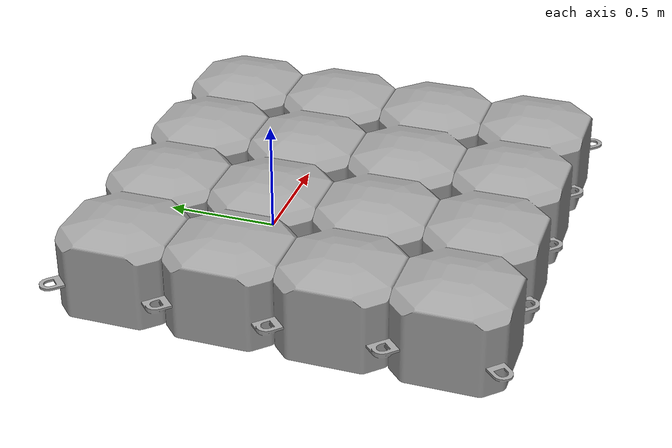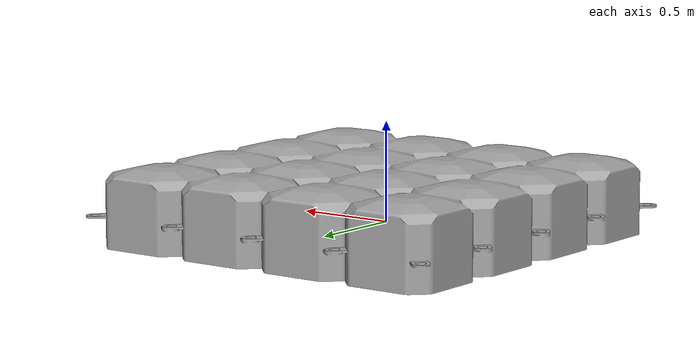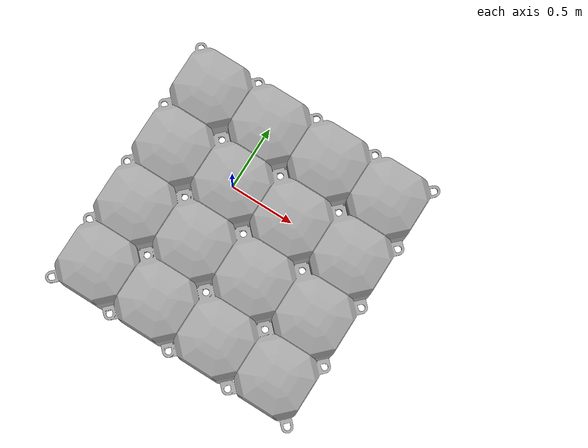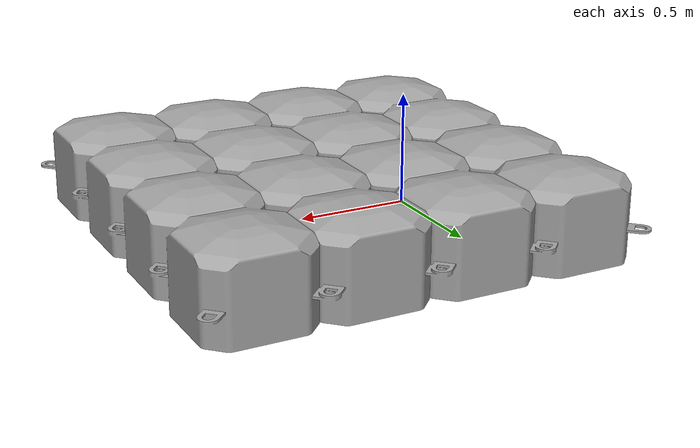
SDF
<?xml version="1.0"?>
<sdf version="1.5">
  <model name="dock_block_4x4">
    <static>true</static>
    <pose>0 0 0.25 0 0 0</pose>
    <link name="link">
      <collision name="collision">
        <pose>0.25 -0.25 -0.2 0 0 0</pose>
        <geometry>
          <box>
            <size>2 2 0.4</size>
          </box>
        </geometry>
      </collision>
      <visual name="visual">
        <geometry>
          <mesh>
            <uri>model://dock_block_4x4/mesh/dock_block_4x4.dae</uri>
          </mesh>
        </geometry>
      </visual>
    </link>
  </model>
</sdf>
